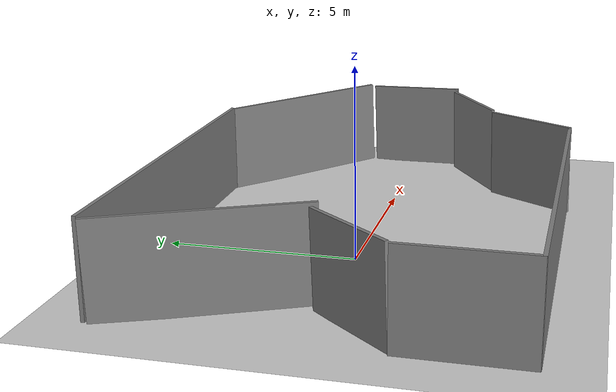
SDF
<sdf version="1.7">
 <world name="default">
  <light name="sun" type="directional">
   <pose>0 0 10 0 -0 0</pose>
   <diffuse>0.8 0.8 0.8 1</diffuse>
   <specular>0.2 0.2 0.2 1</specular>
   <attenuation>
    <range>1000</range>
    <constant>0.9</constant>
    <linear>0.01</linear>
    <quadratic>0.001</quadratic>
   </attenuation>
   <direction>-0.5 0.1 -0.9</direction>
   <spot><inner_angle>0</inner_angle><outer_angle>0</outer_angle><falloff>0</falloff></spot>
  </light>
  <model name="ground_plane">
   <static>1</static>
   <link name="link">
    <collision name="collision">
     <geometry><plane><normal>0 0 1</normal><size>100 100</size></plane></geometry>
     <surface>
      <contact><collide_bitmask>65535</collide_bitmask></contact>
      <friction><ode><mu>100</mu><mu2>50</mu2></ode></friction>
     </surface>
    </collision>
    <visual name="visual">
     <cast_shadows>0</cast_shadows>
     <geometry><plane><normal>0 0 1</normal><size>100 100</size></plane></geometry>
     <material>
      <script><uri>file://media/materials/scripts/gazebo.material</uri><name>Gazebo/Grey</name></script>
     </material>
    </visual>
   </link>
  </model>
  <model name="wall_north">
   <static>1</static>
   <link name="link">
    <collision name="collision"><geometry><box><size>10 0.1 2.5</size></box></geometry></collision>
    <visual name="visual">
     <geometry><box><size>10 0.1 2.5</size></box></geometry>
     <material><ambient>0.5 0.5 0.5 1</ambient><diffuse>0.5 0.5 0.5 1</diffuse></material>
    </visual>
   </link>
   <pose>0 5 1.25 0 -0 0</pose>
  </model>
  <model name="wall_south">
   <static>1</static>
   <link name="link">
    <collision name="collision"><geometry><box><size>10 0.1 2.5</size></box></geometry></collision>
    <visual name="visual">
     <geometry><box><size>10 0.1 2.5</size></box></geometry>
     <material><ambient>0.5 0.5 0.5 1</ambient><diffuse>0.5 0.5 0.5 1</diffuse></material>
    </visual>
   </link>
   <pose>-0.006899 -5.0074 1.25 0 -0 0</pose>
  </model>
  <model name="wall_east">
   <static>1</static>
   <link name="link">
    <collision name="collision"><geometry><box><size>0.1 2.79125 2.5</size></box></geometry></collision>
    <visual name="visual">
     <geometry><box><size>0.1 2.79125 2.5</size></box></geometry>
     <material><ambient>0.5 0.5 0.5 1</ambient><diffuse>0.5 0.5 0.5 1</diffuse></material>
    </visual>
   </link>
   <pose>5.61558 -3.87925 1.25 -0.021072 -0.014008 -0.586588</pose>
  </model>
  <model name="wall_west">
   <static>1</static>
   <link name="link">
    <collision name="collision"><geometry><box><size>0.1 3.14951 2.5</size></box></geometry></collision>
    <visual name="visual">
     <geometry><box><size>0.1 3.14951 2.5</size></box></geometry>
     <material><ambient>0.5 0.5 0.5 1</ambient><diffuse>0.5 0.5 0.5 1</diffuse></material>
    </visual>
   </link>
   <pose>-4.96827 -3.46802 1.25 0 -0 0</pose>
  </model>
  <model name="wall_east_clone">
   <static>1</static>
   <link name="link">
    <collision name="collision"><geometry><box><size>0.1 2.79126 2.5</size></box></geometry></collision>
    <visual name="visual">
     <geometry><box><size>0.1 2.79126 2.5</size></box></geometry>
     <material><ambient>0.5 0.5 0.5 1</ambient><diffuse>0.5 0.5 0.5 1</diffuse></material>
    </visual>
   </link>
   <pose>7.58723 -1.98294 1.25 -0.01608 -0.022655 -1.01165</pose>
  </model>
  <model name="wall_east_clone_clone">
   <static>1</static>
   <link name="link">
    <collision name="collision"><geometry><box><size>0.1 2.79126 2.5</size></box></geometry></collision>
    <visual name="visual">
     <geometry><box><size>0.1 2.79126 2.5</size></box></geometry>
     <material><ambient>0.5 0.5 0.5 1</ambient><diffuse>0.5 0.5 0.5 1</diffuse></material>
    </visual>
   </link>
   <pose>9.02598 0.082327 1.25 -0.027776 -0.000489 -0.075804</pose>
  </model>
  <model name="wall_east_clone_clone_0">
   <static>1</static>
   <link name="link">
    <collision name="collision"><geometry><box><size>0.1 5.27182 2.5</size></box></geometry></collision>
    <visual name="visual">
     <geometry><box><size>0.1 5.27182 2.5</size></box></geometry>
     <material><ambient>0.5 0.5 0.5 1</ambient><diffuse>0.5 0.5 0.5 1</diffuse></material>
    </visual>
   </link>
   <pose>6.96363 3.30384 1.25 0.017152 -0.021855 -2.29447</pose>
  </model>
  <model name="wall_east_clone_clone_1">
   <static>1</static>
   <link name="link">
    <collision name="collision"><geometry><box><size>0.1 2.79126 2.5</size></box></geometry></collision>
    <visual name="visual">
     <geometry><box><size>0.1 2.79126 2.5</size></box></geometry>
     <material><ambient>0.5 0.5 0.5 1</ambient><diffuse>0.5 0.5 0.5 1</diffuse></material>
    </visual>
   </link>
   <pose>-4.05999 -0.833724 1.25 -0.021996 -0.016971 -0.715234</pose>
  </model>
  <model name="wall_east_clone_clone_1_clone">
   <static>1</static>
   <link name="link">
    <collision name="collision"><geometry><box><size>0.1 5.24171 2.5</size></box></geometry></collision>
    <visual name="visual">
     <geometry><box><size>0.1 5.24171 2.5</size></box></geometry>
     <material><ambient>0.5 0.5 0.5 1</ambient><diffuse>0.5 0.5 0.5 1</diffuse></material>
    </visual>
   </link>
   <pose>-3.97903 2.51325 1.25 -0.020163 0.002434 0.394063</pose>
  </model>
  <gravity>0 0 -9.8</gravity>
  <magnetic_field>6e-06 2.3e-05 -4.2e-05</magnetic_field>
  <atmosphere type="adiabatic"/>
  <physics type="ode">
   <max_step_size>0.001</max_step_size>
   <real_time_factor>1</real_time_factor>
   <real_time_update_rate>1000</real_time_update_rate>
  </physics>
  <scene><ambient>0.4 0.4 0.4 1</ambient><background>0.7 0.7 0.7 1</background><shadows>1</shadows></scene>
  <spherical_coordinates>
   <surface_model>EARTH_WGS84</surface_model>
   <latitude_deg>0</latitude_deg>
   <longitude_deg>0</longitude_deg>
   <elevation>0</elevation>
   <heading_deg>0</heading_deg>
  </spherical_coordinates>
 </world>
</sdf>
